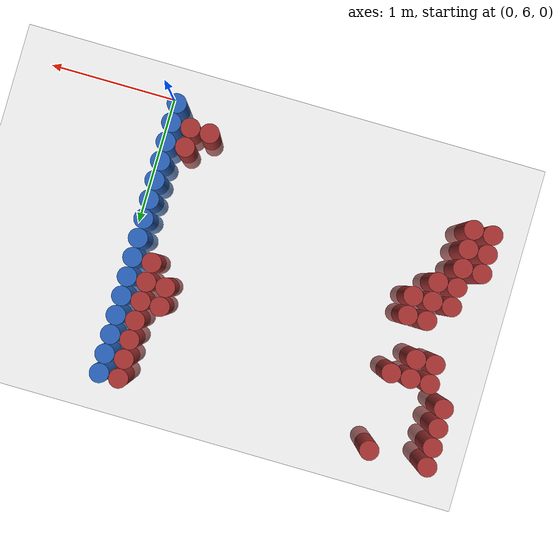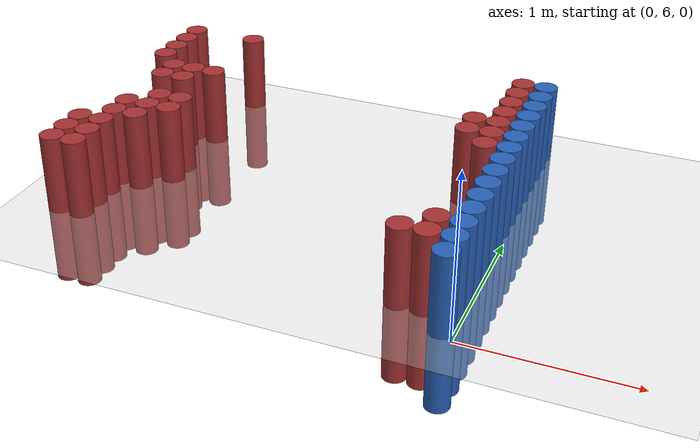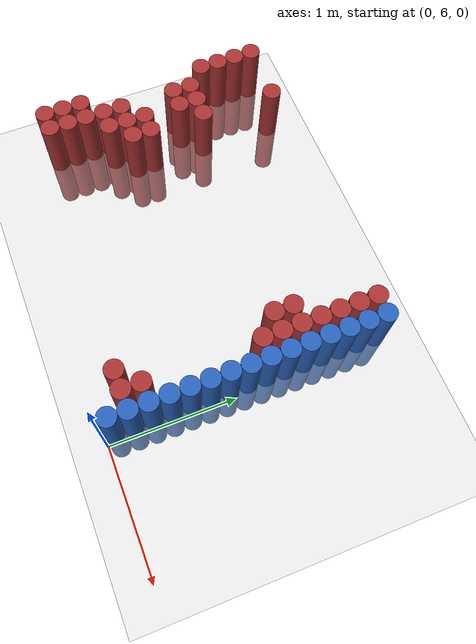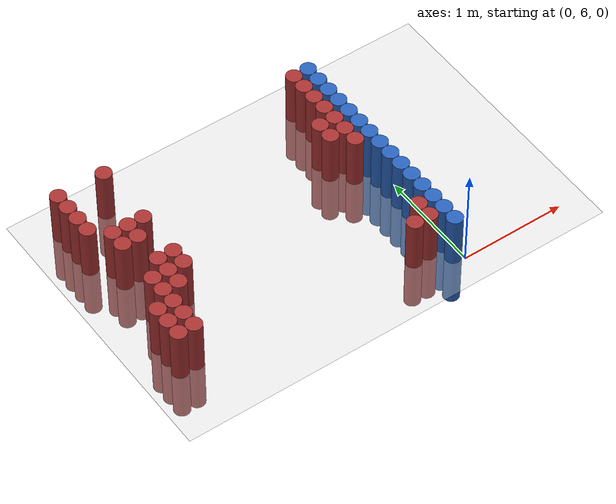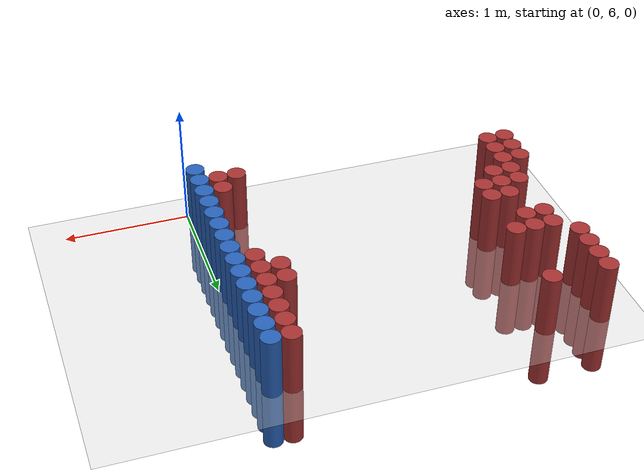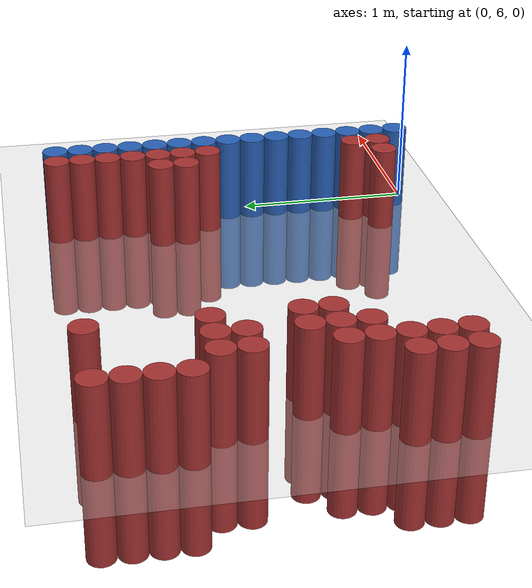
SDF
<sdf version="1.6">
 <world name="default">
  <model name="ground_plane">
   <static>1</static>
   <link name="link">
    <collision name="collision">
     <geometry><plane><normal>0 0 1</normal><size>100 100</size></plane></geometry>
     <surface><friction><ode><mu>100</mu><mu2>50</mu2></ode></friction></surface>
    </collision>
    <visual name="visual">
     <cast_shadows>0</cast_shadows>
     <geometry><plane><normal>0 0 1</normal><size>100 100</size></plane></geometry>
     <material>
      <script><uri>file://media/materials/scripts/gazebo.material</uri><name>Gazebo/Grey</name></script>
     </material>
    </visual>
   </link>
  </model>
  <model name="unit_cylinder_229">
   <static>1</static>
   <pose>-2.625000 6.375000 0.000000 0.000000 0.000000 0.000000</pose>
   <link name="link">
    <inertial>
     <mass>1</mass>
     <inertia><ixx>0.145833</ixx><ixy>0</ixy><ixz>0</ixz><iyy>0.145833</iyy><iyz>0</iyz><izz>0.125</izz></inertia>
    </inertial>
    <collision name="collision">
     <geometry><cylinder><radius>0.075000</radius><length>1</length></cylinder></geometry>
    </collision>
    <visual name="visual">
     <geometry><cylinder><radius>0.075000</radius><length>1</length></cylinder></geometry>
     <material>
      <ambient>0.648000 0.192000 0.192000 1</ambient>
      <diffuse>0.648000 0.192000 0.192000 1</diffuse>
     </material>
     <material>
      <script><name>Gazebo/Grey</name><uri>file://media/materials/scripts/gazebo.material</uri></script>
     </material>
    </visual>
   </link>
  </model>
  <model name="unit_cylinder_230">
   <static>1</static>
   <pose>-2.625000 6.525000 0.000000 0.000000 0.000000 0.000000</pose>
   <link name="link">
    <inertial>
     <mass>1</mass>
     <inertia><ixx>0.145833</ixx><ixy>0</ixy><ixz>0</ixz><iyy>0.145833</iyy><iyz>0</iyz><izz>0.125</izz></inertia>
    </inertial>
    <collision name="collision">
     <geometry><cylinder><radius>0.075000</radius><length>1</length></cylinder></geometry>
    </collision>
    <visual name="visual">
     <geometry><cylinder><radius>0.075000</radius><length>1</length></cylinder></geometry>
     <material>
      <ambient>0.648000 0.192000 0.192000 1</ambient>
      <diffuse>0.648000 0.192000 0.192000 1</diffuse>
     </material>
     <material>
      <script><name>Gazebo/Grey</name><uri>file://media/materials/scripts/gazebo.material</uri></script>
     </material>
    </visual>
   </link>
  </model>
  <model name="unit_cylinder_231">
   <static>1</static>
   <pose>-2.625000 6.675000 0.000000 0.000000 0.000000 0.000000</pose>
   <link name="link">
    <inertial>
     <mass>1</mass>
     <inertia><ixx>0.145833</ixx><ixy>0</ixy><ixz>0</ixz><iyy>0.145833</iyy><iyz>0</iyz><izz>0.125</izz></inertia>
    </inertial>
    <collision name="collision">
     <geometry><cylinder><radius>0.075000</radius><length>1</length></cylinder></geometry>
    </collision>
    <visual name="visual">
     <geometry><cylinder><radius>0.075000</radius><length>1</length></cylinder></geometry>
     <material>
      <ambient>0.648000 0.192000 0.192000 1</ambient>
      <diffuse>0.648000 0.192000 0.192000 1</diffuse>
     </material>
     <material>
      <script><name>Gazebo/Grey</name><uri>file://media/materials/scripts/gazebo.material</uri></script>
     </material>
    </visual>
   </link>
  </model>
  <model name="unit_cylinder_232">
   <static>1</static>
   <pose>-2.625000 7.725000 0.000000 0.000000 0.000000 0.000000</pose>
   <link name="link">
    <inertial>
     <mass>1</mass>
     <inertia><ixx>0.145833</ixx><ixy>0</ixy><ixz>0</ixz><iyy>0.145833</iyy><iyz>0</iyz><izz>0.125</izz></inertia>
    </inertial>
    <collision name="collision">
     <geometry><cylinder><radius>0.075000</radius><length>1</length></cylinder></geometry>
    </collision>
    <visual name="visual">
     <geometry><cylinder><radius>0.075000</radius><length>1</length></cylinder></geometry>
     <material>
      <ambient>0.648000 0.192000 0.192000 1</ambient>
      <diffuse>0.648000 0.192000 0.192000 1</diffuse>
     </material>
     <material>
      <script><name>Gazebo/Grey</name><uri>file://media/materials/scripts/gazebo.material</uri></script>
     </material>
    </visual>
   </link>
  </model>
  <model name="unit_cylinder_233">
   <static>1</static>
   <pose>-2.625000 7.875000 0.000000 0.000000 0.000000 0.000000</pose>
   <link name="link">
    <inertial>
     <mass>1</mass>
     <inertia><ixx>0.145833</ixx><ixy>0</ixy><ixz>0</ixz><iyy>0.145833</iyy><iyz>0</iyz><izz>0.125</izz></inertia>
    </inertial>
    <collision name="collision">
     <geometry><cylinder><radius>0.075000</radius><length>1</length></cylinder></geometry>
    </collision>
    <visual name="visual">
     <geometry><cylinder><radius>0.075000</radius><length>1</length></cylinder></geometry>
     <material>
      <ambient>0.648000 0.192000 0.192000 1</ambient>
      <diffuse>0.648000 0.192000 0.192000 1</diffuse>
     </material>
     <material>
      <script><name>Gazebo/Grey</name><uri>file://media/materials/scripts/gazebo.material</uri></script>
     </material>
    </visual>
   </link>
  </model>
  <model name="unit_cylinder_234">
   <static>1</static>
   <pose>-2.625000 8.025000 0.000000 0.000000 0.000000 0.000000</pose>
   <link name="link">
    <inertial>
     <mass>1</mass>
     <inertia><ixx>0.145833</ixx><ixy>0</ixy><ixz>0</ixz><iyy>0.145833</iyy><iyz>0</iyz><izz>0.125</izz></inertia>
    </inertial>
    <collision name="collision">
     <geometry><cylinder><radius>0.075000</radius><length>1</length></cylinder></geometry>
    </collision>
    <visual name="visual">
     <geometry><cylinder><radius>0.075000</radius><length>1</length></cylinder></geometry>
     <material>
      <ambient>0.648000 0.192000 0.192000 1</ambient>
      <diffuse>0.648000 0.192000 0.192000 1</diffuse>
     </material>
     <material>
      <script><name>Gazebo/Grey</name><uri>file://media/materials/scripts/gazebo.material</uri></script>
     </material>
    </visual>
   </link>
  </model>
  <model name="unit_cylinder_235">
   <static>1</static>
   <pose>-2.625000 8.175000 0.000000 0.000000 0.000000 0.000000</pose>
   <link name="link">
    <inertial>
     <mass>1</mass>
     <inertia><ixx>0.145833</ixx><ixy>0</ixy><ixz>0</ixz><iyy>0.145833</iyy><iyz>0</iyz><izz>0.125</izz></inertia>
    </inertial>
    <collision name="collision">
     <geometry><cylinder><radius>0.075000</radius><length>1</length></cylinder></geometry>
    </collision>
    <visual name="visual">
     <geometry><cylinder><radius>0.075000</radius><length>1</length></cylinder></geometry>
     <material>
      <ambient>0.648000 0.192000 0.192000 1</ambient>
      <diffuse>0.648000 0.192000 0.192000 1</diffuse>
     </material>
     <material>
      <script><name>Gazebo/Grey</name><uri>file://media/materials/scripts/gazebo.material</uri></script>
     </material>
    </visual>
   </link>
  </model>
  <model name="unit_cylinder_241">
   <static>1</static>
   <pose>-2.475000 6.375000 0.000000 0.000000 0.000000 0.000000</pose>
   <link name="link">
    <inertial>
     <mass>1</mass>
     <inertia><ixx>0.145833</ixx><ixy>0</ixy><ixz>0</ixz><iyy>0.145833</iyy><iyz>0</iyz><izz>0.125</izz></inertia>
    </inertial>
    <collision name="collision">
     <geometry><cylinder><radius>0.075000</radius><length>1</length></cylinder></geometry>
    </collision>
    <visual name="visual">
     <geometry><cylinder><radius>0.075000</radius><length>1</length></cylinder></geometry>
     <material>
      <ambient>0.648000 0.192000 0.192000 1</ambient>
      <diffuse>0.648000 0.192000 0.192000 1</diffuse>
     </material>
     <material>
      <script><name>Gazebo/Grey</name><uri>file://media/materials/scripts/gazebo.material</uri></script>
     </material>
    </visual>
   </link>
  </model>
  <model name="unit_cylinder_242">
   <static>1</static>
   <pose>-2.475000 6.525000 0.000000 0.000000 0.000000 0.000000</pose>
   <link name="link">
    <inertial>
     <mass>1</mass>
     <inertia><ixx>0.145833</ixx><ixy>0</ixy><ixz>0</ixz><iyy>0.145833</iyy><iyz>0</iyz><izz>0.125</izz></inertia>
    </inertial>
    <collision name="collision">
     <geometry><cylinder><radius>0.075000</radius><length>1</length></cylinder></geometry>
    </collision>
    <visual name="visual">
     <geometry><cylinder><radius>0.075000</radius><length>1</length></cylinder></geometry>
     <material>
      <ambient>0.648000 0.192000 0.192000 1</ambient>
      <diffuse>0.648000 0.192000 0.192000 1</diffuse>
     </material>
     <material>
      <script><name>Gazebo/Grey</name><uri>file://media/materials/scripts/gazebo.material</uri></script>
     </material>
    </visual>
   </link>
  </model>
  <model name="unit_cylinder_243">
   <static>1</static>
   <pose>-2.475000 6.675000 0.000000 0.000000 0.000000 0.000000</pose>
   <link name="link">
    <inertial>
     <mass>1</mass>
     <inertia><ixx>0.145833</ixx><ixy>0</ixy><ixz>0</ixz><iyy>0.145833</iyy><iyz>0</iyz><izz>0.125</izz></inertia>
    </inertial>
    <collision name="collision">
     <geometry><cylinder><radius>0.075000</radius><length>1</length></cylinder></geometry>
    </collision>
    <visual name="visual">
     <geometry><cylinder><radius>0.075000</radius><length>1</length></cylinder></geometry>
     <material>
      <ambient>0.648000 0.192000 0.192000 1</ambient>
      <diffuse>0.648000 0.192000 0.192000 1</diffuse>
     </material>
     <material>
      <script><name>Gazebo/Grey</name><uri>file://media/materials/scripts/gazebo.material</uri></script>
     </material>
    </visual>
   </link>
  </model>
  <model name="unit_cylinder_244">
   <static>1</static>
   <pose>-2.475000 6.825000 0.000000 0.000000 0.000000 0.000000</pose>
   <link name="link">
    <inertial>
     <mass>1</mass>
     <inertia><ixx>0.145833</ixx><ixy>0</ixy><ixz>0</ixz><iyy>0.145833</iyy><iyz>0</iyz><izz>0.125</izz></inertia>
    </inertial>
    <collision name="collision">
     <geometry><cylinder><radius>0.075000</radius><length>1</length></cylinder></geometry>
    </collision>
    <visual name="visual">
     <geometry><cylinder><radius>0.075000</radius><length>1</length></cylinder></geometry>
     <material>
      <ambient>0.648000 0.192000 0.192000 1</ambient>
      <diffuse>0.648000 0.192000 0.192000 1</diffuse>
     </material>
     <material>
      <script><name>Gazebo/Grey</name><uri>file://media/materials/scripts/gazebo.material</uri></script>
     </material>
    </visual>
   </link>
  </model>
  <model name="unit_cylinder_245">
   <static>1</static>
   <pose>-2.475000 6.975000 0.000000 0.000000 0.000000 0.000000</pose>
   <link name="link">
    <inertial>
     <mass>1</mass>
     <inertia><ixx>0.145833</ixx><ixy>0</ixy><ixz>0</ixz><iyy>0.145833</iyy><iyz>0</iyz><izz>0.125</izz></inertia>
    </inertial>
    <collision name="collision">
     <geometry><cylinder><radius>0.075000</radius><length>1</length></cylinder></geometry>
    </collision>
    <visual name="visual">
     <geometry><cylinder><radius>0.075000</radius><length>1</length></cylinder></geometry>
     <material>
      <ambient>0.648000 0.192000 0.192000 1</ambient>
      <diffuse>0.648000 0.192000 0.192000 1</diffuse>
     </material>
     <material>
      <script><name>Gazebo/Grey</name><uri>file://media/materials/scripts/gazebo.material</uri></script>
     </material>
    </visual>
   </link>
  </model>
  <model name="unit_cylinder_246">
   <static>1</static>
   <pose>-2.475000 7.425000 0.000000 0.000000 0.000000 0.000000</pose>
   <link name="link">
    <inertial>
     <mass>1</mass>
     <inertia><ixx>0.145833</ixx><ixy>0</ixy><ixz>0</ixz><iyy>0.145833</iyy><iyz>0</iyz><izz>0.125</izz></inertia>
    </inertial>
    <collision name="collision">
     <geometry><cylinder><radius>0.075000</radius><length>1</length></cylinder></geometry>
    </collision>
    <visual name="visual">
     <geometry><cylinder><radius>0.075000</radius><length>1</length></cylinder></geometry>
     <material>
      <ambient>0.648000 0.192000 0.192000 1</ambient>
      <diffuse>0.648000 0.192000 0.192000 1</diffuse>
     </material>
     <material>
      <script><name>Gazebo/Grey</name><uri>file://media/materials/scripts/gazebo.material</uri></script>
     </material>
    </visual>
   </link>
  </model>
  <model name="unit_cylinder_247">
   <static>1</static>
   <pose>-2.475000 7.575000 0.000000 0.000000 0.000000 0.000000</pose>
   <link name="link">
    <inertial>
     <mass>1</mass>
     <inertia><ixx>0.145833</ixx><ixy>0</ixy><ixz>0</ixz><iyy>0.145833</iyy><iyz>0</iyz><izz>0.125</izz></inertia>
    </inertial>
    <collision name="collision">
     <geometry><cylinder><radius>0.075000</radius><length>1</length></cylinder></geometry>
    </collision>
    <visual name="visual">
     <geometry><cylinder><radius>0.075000</radius><length>1</length></cylinder></geometry>
     <material>
      <ambient>0.648000 0.192000 0.192000 1</ambient>
      <diffuse>0.648000 0.192000 0.192000 1</diffuse>
     </material>
     <material>
      <script><name>Gazebo/Grey</name><uri>file://media/materials/scripts/gazebo.material</uri></script>
     </material>
    </visual>
   </link>
  </model>
  <model name="unit_cylinder_256">
   <static>1</static>
   <pose>-2.325000 6.825000 0.000000 0.000000 0.000000 0.000000</pose>
   <link name="link">
    <inertial>
     <mass>1</mass>
     <inertia><ixx>0.145833</ixx><ixy>0</ixy><ixz>0</ixz><iyy>0.145833</iyy><iyz>0</iyz><izz>0.125</izz></inertia>
    </inertial>
    <collision name="collision">
     <geometry><cylinder><radius>0.075000</radius><length>1</length></cylinder></geometry>
    </collision>
    <visual name="visual">
     <geometry><cylinder><radius>0.075000</radius><length>1</length></cylinder></geometry>
     <material>
      <ambient>0.648000 0.192000 0.192000 1</ambient>
      <diffuse>0.648000 0.192000 0.192000 1</diffuse>
     </material>
     <material>
      <script><name>Gazebo/Grey</name><uri>file://media/materials/scripts/gazebo.material</uri></script>
     </material>
    </visual>
   </link>
  </model>
  <model name="unit_cylinder_257">
   <static>1</static>
   <pose>-2.325000 6.975000 0.000000 0.000000 0.000000 0.000000</pose>
   <link name="link">
    <inertial>
     <mass>1</mass>
     <inertia><ixx>0.145833</ixx><ixy>0</ixy><ixz>0</ixz><iyy>0.145833</iyy><iyz>0</iyz><izz>0.125</izz></inertia>
    </inertial>
    <collision name="collision">
     <geometry><cylinder><radius>0.075000</radius><length>1</length></cylinder></geometry>
    </collision>
    <visual name="visual">
     <geometry><cylinder><radius>0.075000</radius><length>1</length></cylinder></geometry>
     <material>
      <ambient>0.648000 0.192000 0.192000 1</ambient>
      <diffuse>0.648000 0.192000 0.192000 1</diffuse>
     </material>
     <material>
      <script><name>Gazebo/Grey</name><uri>file://media/materials/scripts/gazebo.material</uri></script>
     </material>
    </visual>
   </link>
  </model>
  <model name="unit_cylinder_258">
   <static>1</static>
   <pose>-2.325000 7.125000 0.000000 0.000000 0.000000 0.000000</pose>
   <link name="link">
    <inertial>
     <mass>1</mass>
     <inertia><ixx>0.145833</ixx><ixy>0</ixy><ixz>0</ixz><iyy>0.145833</iyy><iyz>0</iyz><izz>0.125</izz></inertia>
    </inertial>
    <collision name="collision">
     <geometry><cylinder><radius>0.075000</radius><length>1</length></cylinder></geometry>
    </collision>
    <visual name="visual">
     <geometry><cylinder><radius>0.075000</radius><length>1</length></cylinder></geometry>
     <material>
      <ambient>0.648000 0.192000 0.192000 1</ambient>
      <diffuse>0.648000 0.192000 0.192000 1</diffuse>
     </material>
     <material>
      <script><name>Gazebo/Grey</name><uri>file://media/materials/scripts/gazebo.material</uri></script>
     </material>
    </visual>
   </link>
  </model>
  <model name="unit_cylinder_259">
   <static>1</static>
   <pose>-2.325000 7.425000 0.000000 0.000000 0.000000 0.000000</pose>
   <link name="link">
    <inertial>
     <mass>1</mass>
     <inertia><ixx>0.145833</ixx><ixy>0</ixy><ixz>0</ixz><iyy>0.145833</iyy><iyz>0</iyz><izz>0.125</izz></inertia>
    </inertial>
    <collision name="collision">
     <geometry><cylinder><radius>0.075000</radius><length>1</length></cylinder></geometry>
    </collision>
    <visual name="visual">
     <geometry><cylinder><radius>0.075000</radius><length>1</length></cylinder></geometry>
     <material>
      <ambient>0.648000 0.192000 0.192000 1</ambient>
      <diffuse>0.648000 0.192000 0.192000 1</diffuse>
     </material>
     <material>
      <script><name>Gazebo/Grey</name><uri>file://media/materials/scripts/gazebo.material</uri></script>
     </material>
    </visual>
   </link>
  </model>
  <model name="unit_cylinder_260">
   <static>1</static>
   <pose>-2.325000 7.575000 0.000000 0.000000 0.000000 0.000000</pose>
   <link name="link">
    <inertial>
     <mass>1</mass>
     <inertia><ixx>0.145833</ixx><ixy>0</ixy><ixz>0</ixz><iyy>0.145833</iyy><iyz>0</iyz><izz>0.125</izz></inertia>
    </inertial>
    <collision name="collision">
     <geometry><cylinder><radius>0.075000</radius><length>1</length></cylinder></geometry>
    </collision>
    <visual name="visual">
     <geometry><cylinder><radius>0.075000</radius><length>1</length></cylinder></geometry>
     <material>
      <ambient>0.648000 0.192000 0.192000 1</ambient>
      <diffuse>0.648000 0.192000 0.192000 1</diffuse>
     </material>
     <material>
      <script><name>Gazebo/Grey</name><uri>file://media/materials/scripts/gazebo.material</uri></script>
     </material>
    </visual>
   </link>
  </model>
  <model name="unit_cylinder_268">
   <static>1</static>
   <pose>-2.175000 6.975000 0.000000 0.000000 0.000000 0.000000</pose>
   <link name="link">
    <inertial>
     <mass>1</mass>
     <inertia><ixx>0.145833</ixx><ixy>0</ixy><ixz>0</ixz><iyy>0.145833</iyy><iyz>0</iyz><izz>0.125</izz></inertia>
    </inertial>
    <collision name="collision">
     <geometry><cylinder><radius>0.075000</radius><length>1</length></cylinder></geometry>
    </collision>
    <visual name="visual">
     <geometry><cylinder><radius>0.075000</radius><length>1</length></cylinder></geometry>
     <material>
      <ambient>0.648000 0.192000 0.192000 1</ambient>
      <diffuse>0.648000 0.192000 0.192000 1</diffuse>
     </material>
     <material>
      <script><name>Gazebo/Grey</name><uri>file://media/materials/scripts/gazebo.material</uri></script>
     </material>
    </visual>
   </link>
  </model>
  <model name="unit_cylinder_269">
   <static>1</static>
   <pose>-2.175000 7.125000 0.000000 0.000000 0.000000 0.000000</pose>
   <link name="link">
    <inertial>
     <mass>1</mass>
     <inertia><ixx>0.145833</ixx><ixy>0</ixy><ixz>0</ixz><iyy>0.145833</iyy><iyz>0</iyz><izz>0.125</izz></inertia>
    </inertial>
    <collision name="collision">
     <geometry><cylinder><radius>0.075000</radius><length>1</length></cylinder></geometry>
    </collision>
    <visual name="visual">
     <geometry><cylinder><radius>0.075000</radius><length>1</length></cylinder></geometry>
     <material>
      <ambient>0.648000 0.192000 0.192000 1</ambient>
      <diffuse>0.648000 0.192000 0.192000 1</diffuse>
     </material>
     <material>
      <script><name>Gazebo/Grey</name><uri>file://media/materials/scripts/gazebo.material</uri></script>
     </material>
    </visual>
   </link>
  </model>
  <model name="unit_cylinder_270">
   <static>1</static>
   <pose>-2.175000 7.575000 0.000000 0.000000 0.000000 0.000000</pose>
   <link name="link">
    <inertial>
     <mass>1</mass>
     <inertia><ixx>0.145833</ixx><ixy>0</ixy><ixz>0</ixz><iyy>0.145833</iyy><iyz>0</iyz><izz>0.125</izz></inertia>
    </inertial>
    <collision name="collision">
     <geometry><cylinder><radius>0.075000</radius><length>1</length></cylinder></geometry>
    </collision>
    <visual name="visual">
     <geometry><cylinder><radius>0.075000</radius><length>1</length></cylinder></geometry>
     <material>
      <ambient>0.648000 0.192000 0.192000 1</ambient>
      <diffuse>0.648000 0.192000 0.192000 1</diffuse>
     </material>
     <material>
      <script><name>Gazebo/Grey</name><uri>file://media/materials/scripts/gazebo.material</uri></script>
     </material>
    </visual>
   </link>
  </model>
  <model name="unit_cylinder_271">
   <static>1</static>
   <pose>-2.175000 8.175000 0.000000 0.000000 0.000000 0.000000</pose>
   <link name="link">
    <inertial>
     <mass>1</mass>
     <inertia><ixx>0.145833</ixx><ixy>0</ixy><ixz>0</ixz><iyy>0.145833</iyy><iyz>0</iyz><izz>0.125</izz></inertia>
    </inertial>
    <collision name="collision">
     <geometry><cylinder><radius>0.075000</radius><length>1</length></cylinder></geometry>
    </collision>
    <visual name="visual">
     <geometry><cylinder><radius>0.075000</radius><length>1</length></cylinder></geometry>
     <material>
      <ambient>0.648000 0.192000 0.192000 1</ambient>
      <diffuse>0.648000 0.192000 0.192000 1</diffuse>
     </material>
     <material>
      <script><name>Gazebo/Grey</name><uri>file://media/materials/scripts/gazebo.material</uri></script>
     </material>
    </visual>
   </link>
  </model>
  <model name="unit_cylinder_301">
   <static>1</static>
   <pose>-0.375000 6.225000 0.000000 0.000000 0.000000 0.000000</pose>
   <link name="link">
    <inertial>
     <mass>1</mass>
     <inertia><ixx>0.145833</ixx><ixy>0</ixy><ixz>0</ixz><iyy>0.145833</iyy><iyz>0</iyz><izz>0.125</izz></inertia>
    </inertial>
    <collision name="collision">
     <geometry><cylinder><radius>0.075000</radius><length>1</length></cylinder></geometry>
    </collision>
    <visual name="visual">
     <geometry><cylinder><radius>0.075000</radius><length>1</length></cylinder></geometry>
     <material>
      <ambient>0.648000 0.192000 0.192000 1</ambient>
      <diffuse>0.648000 0.192000 0.192000 1</diffuse>
     </material>
     <material>
      <script><name>Gazebo/Grey</name><uri>file://media/materials/scripts/gazebo.material</uri></script>
     </material>
    </visual>
   </link>
  </model>
  <model name="unit_cylinder_302">
   <static>1</static>
   <pose>-0.375000 7.425000 0.000000 0.000000 0.000000 0.000000</pose>
   <link name="link">
    <inertial>
     <mass>1</mass>
     <inertia><ixx>0.145833</ixx><ixy>0</ixy><ixz>0</ixz><iyy>0.145833</iyy><iyz>0</iyz><izz>0.125</izz></inertia>
    </inertial>
    <collision name="collision">
     <geometry><cylinder><radius>0.075000</radius><length>1</length></cylinder></geometry>
    </collision>
    <visual name="visual">
     <geometry><cylinder><radius>0.075000</radius><length>1</length></cylinder></geometry>
     <material>
      <ambient>0.648000 0.192000 0.192000 1</ambient>
      <diffuse>0.648000 0.192000 0.192000 1</diffuse>
     </material>
     <material>
      <script><name>Gazebo/Grey</name><uri>file://media/materials/scripts/gazebo.material</uri></script>
     </material>
    </visual>
   </link>
  </model>
  <model name="unit_cylinder_303">
   <static>1</static>
   <pose>-0.375000 7.575000 0.000000 0.000000 0.000000 0.000000</pose>
   <link name="link">
    <inertial>
     <mass>1</mass>
     <inertia><ixx>0.145833</ixx><ixy>0</ixy><ixz>0</ixz><iyy>0.145833</iyy><iyz>0</iyz><izz>0.125</izz></inertia>
    </inertial>
    <collision name="collision">
     <geometry><cylinder><radius>0.075000</radius><length>1</length></cylinder></geometry>
    </collision>
    <visual name="visual">
     <geometry><cylinder><radius>0.075000</radius><length>1</length></cylinder></geometry>
     <material>
      <ambient>0.648000 0.192000 0.192000 1</ambient>
      <diffuse>0.648000 0.192000 0.192000 1</diffuse>
     </material>
     <material>
      <script><name>Gazebo/Grey</name><uri>file://media/materials/scripts/gazebo.material</uri></script>
     </material>
    </visual>
   </link>
  </model>
  <model name="unit_cylinder_307">
   <static>1</static>
   <pose>-0.225000 6.225000 0.000000 0.000000 0.000000 0.000000</pose>
   <link name="link">
    <inertial>
     <mass>1</mass>
     <inertia><ixx>0.145833</ixx><ixy>0</ixy><ixz>0</ixz><iyy>0.145833</iyy><iyz>0</iyz><izz>0.125</izz></inertia>
    </inertial>
    <collision name="collision">
     <geometry><cylinder><radius>0.075000</radius><length>1</length></cylinder></geometry>
    </collision>
    <visual name="visual">
     <geometry><cylinder><radius>0.075000</radius><length>1</length></cylinder></geometry>
     <material>
      <ambient>0.648000 0.192000 0.192000 1</ambient>
      <diffuse>0.648000 0.192000 0.192000 1</diffuse>
     </material>
     <material>
      <script><name>Gazebo/Grey</name><uri>file://media/materials/scripts/gazebo.material</uri></script>
     </material>
    </visual>
   </link>
  </model>
  <model name="unit_cylinder_308">
   <static>1</static>
   <pose>-0.225000 6.375000 0.000000 0.000000 0.000000 0.000000</pose>
   <link name="link">
    <inertial>
     <mass>1</mass>
     <inertia><ixx>0.145833</ixx><ixy>0</ixy><ixz>0</ixz><iyy>0.145833</iyy><iyz>0</iyz><izz>0.125</izz></inertia>
    </inertial>
    <collision name="collision">
     <geometry><cylinder><radius>0.075000</radius><length>1</length></cylinder></geometry>
    </collision>
    <visual name="visual">
     <geometry><cylinder><radius>0.075000</radius><length>1</length></cylinder></geometry>
     <material>
      <ambient>0.648000 0.192000 0.192000 1</ambient>
      <diffuse>0.648000 0.192000 0.192000 1</diffuse>
     </material>
     <material>
      <script><name>Gazebo/Grey</name><uri>file://media/materials/scripts/gazebo.material</uri></script>
     </material>
    </visual>
   </link>
  </model>
  <model name="unit_cylinder_309">
   <static>1</static>
   <pose>-0.225000 7.275000 0.000000 0.000000 0.000000 0.000000</pose>
   <link name="link">
    <inertial>
     <mass>1</mass>
     <inertia><ixx>0.145833</ixx><ixy>0</ixy><ixz>0</ixz><iyy>0.145833</iyy><iyz>0</iyz><izz>0.125</izz></inertia>
    </inertial>
    <collision name="collision">
     <geometry><cylinder><radius>0.075000</radius><length>1</length></cylinder></geometry>
    </collision>
    <visual name="visual">
     <geometry><cylinder><radius>0.075000</radius><length>1</length></cylinder></geometry>
     <material>
      <ambient>0.648000 0.192000 0.192000 1</ambient>
      <diffuse>0.648000 0.192000 0.192000 1</diffuse>
     </material>
     <material>
      <script><name>Gazebo/Grey</name><uri>file://media/materials/scripts/gazebo.material</uri></script>
     </material>
    </visual>
   </link>
  </model>
  <model name="unit_cylinder_310">
   <static>1</static>
   <pose>-0.225000 7.425000 0.000000 0.000000 0.000000 0.000000</pose>
   <link name="link">
    <inertial>
     <mass>1</mass>
     <inertia><ixx>0.145833</ixx><ixy>0</ixy><ixz>0</ixz><iyy>0.145833</iyy><iyz>0</iyz><izz>0.125</izz></inertia>
    </inertial>
    <collision name="collision">
     <geometry><cylinder><radius>0.075000</radius><length>1</length></cylinder></geometry>
    </collision>
    <visual name="visual">
     <geometry><cylinder><radius>0.075000</radius><length>1</length></cylinder></geometry>
     <material>
      <ambient>0.648000 0.192000 0.192000 1</ambient>
      <diffuse>0.648000 0.192000 0.192000 1</diffuse>
     </material>
     <material>
      <script><name>Gazebo/Grey</name><uri>file://media/materials/scripts/gazebo.material</uri></script>
     </material>
    </visual>
   </link>
  </model>
  <model name="unit_cylinder_311">
   <static>1</static>
   <pose>-0.225000 7.575000 0.000000 0.000000 0.000000 0.000000</pose>
   <link name="link">
    <inertial>
     <mass>1</mass>
     <inertia><ixx>0.145833</ixx><ixy>0</ixy><ixz>0</ixz><iyy>0.145833</iyy><iyz>0</iyz><izz>0.125</izz></inertia>
    </inertial>
    <collision name="collision">
     <geometry><cylinder><radius>0.075000</radius><length>1</length></cylinder></geometry>
    </collision>
    <visual name="visual">
     <geometry><cylinder><radius>0.075000</radius><length>1</length></cylinder></geometry>
     <material>
      <ambient>0.648000 0.192000 0.192000 1</ambient>
      <diffuse>0.648000 0.192000 0.192000 1</diffuse>
     </material>
     <material>
      <script><name>Gazebo/Grey</name><uri>file://media/materials/scripts/gazebo.material</uri></script>
     </material>
    </visual>
   </link>
  </model>
  <model name="unit_cylinder_312">
   <static>1</static>
   <pose>-0.225000 7.725000 0.000000 0.000000 0.000000 0.000000</pose>
   <link name="link">
    <inertial>
     <mass>1</mass>
     <inertia><ixx>0.145833</ixx><ixy>0</ixy><ixz>0</ixz><iyy>0.145833</iyy><iyz>0</iyz><izz>0.125</izz></inertia>
    </inertial>
    <collision name="collision">
     <geometry><cylinder><radius>0.075000</radius><length>1</length></cylinder></geometry>
    </collision>
    <visual name="visual">
     <geometry><cylinder><radius>0.075000</radius><length>1</length></cylinder></geometry>
     <material>
      <ambient>0.648000 0.192000 0.192000 1</ambient>
      <diffuse>0.648000 0.192000 0.192000 1</diffuse>
     </material>
     <material>
      <script><name>Gazebo/Grey</name><uri>file://media/materials/scripts/gazebo.material</uri></script>
     </material>
    </visual>
   </link>
  </model>
  <model name="unit_cylinder_313">
   <static>1</static>
   <pose>-0.225000 7.875000 0.000000 0.000000 0.000000 0.000000</pose>
   <link name="link">
    <inertial>
     <mass>1</mass>
     <inertia><ixx>0.145833</ixx><ixy>0</ixy><ixz>0</ixz><iyy>0.145833</iyy><iyz>0</iyz><izz>0.125</izz></inertia>
    </inertial>
    <collision name="collision">
     <geometry><cylinder><radius>0.075000</radius><length>1</length></cylinder></geometry>
    </collision>
    <visual name="visual">
     <geometry><cylinder><radius>0.075000</radius><length>1</length></cylinder></geometry>
     <material>
      <ambient>0.648000 0.192000 0.192000 1</ambient>
      <diffuse>0.648000 0.192000 0.192000 1</diffuse>
     </material>
     <material>
      <script><name>Gazebo/Grey</name><uri>file://media/materials/scripts/gazebo.material</uri></script>
     </material>
    </visual>
   </link>
  </model>
  <model name="unit_cylinder_314">
   <static>1</static>
   <pose>-0.225000 8.025000 0.000000 0.000000 0.000000 0.000000</pose>
   <link name="link">
    <inertial>
     <mass>1</mass>
     <inertia><ixx>0.145833</ixx><ixy>0</ixy><ixz>0</ixz><iyy>0.145833</iyy><iyz>0</iyz><izz>0.125</izz></inertia>
    </inertial>
    <collision name="collision">
     <geometry><cylinder><radius>0.075000</radius><length>1</length></cylinder></geometry>
    </collision>
    <visual name="visual">
     <geometry><cylinder><radius>0.075000</radius><length>1</length></cylinder></geometry>
     <material>
      <ambient>0.648000 0.192000 0.192000 1</ambient>
      <diffuse>0.648000 0.192000 0.192000 1</diffuse>
     </material>
     <material>
      <script><name>Gazebo/Grey</name><uri>file://media/materials/scripts/gazebo.material</uri></script>
     </material>
    </visual>
   </link>
  </model>
  <model name="unit_cylinder_315">
   <static>1</static>
   <pose>-0.225000 8.175000 0.000000 0.000000 0.000000 0.000000</pose>
   <link name="link">
    <inertial>
     <mass>1</mass>
     <inertia><ixx>0.145833</ixx><ixy>0</ixy><ixz>0</ixz><iyy>0.145833</iyy><iyz>0</iyz><izz>0.125</izz></inertia>
    </inertial>
    <collision name="collision">
     <geometry><cylinder><radius>0.075000</radius><length>1</length></cylinder></geometry>
    </collision>
    <visual name="visual">
     <geometry><cylinder><radius>0.075000</radius><length>1</length></cylinder></geometry>
     <material>
      <ambient>0.648000 0.192000 0.192000 1</ambient>
      <diffuse>0.648000 0.192000 0.192000 1</diffuse>
     </material>
     <material>
      <script><name>Gazebo/Grey</name><uri>file://media/materials/scripts/gazebo.material</uri></script>
     </material>
    </visual>
   </link>
  </model>
  <model name="unit_cylinder_330">
   <static>1</static>
   <pose>-0.075000 6.075000 0.000000 0.000000 0.000000 0.000000</pose>
   <link name="link">
    <inertial>
     <mass>1</mass>
     <inertia><ixx>0.145833</ixx><ixy>0</ixy><ixz>0</ixz><iyy>0.145833</iyy><iyz>0</iyz><izz>0.125</izz></inertia>
    </inertial>
    <collision name="collision">
     <geometry><cylinder><radius>0.075000</radius><length>1</length></cylinder></geometry>
    </collision>
    <visual name="visual">
     <geometry><cylinder><radius>0.075000</radius><length>1</length></cylinder></geometry>
     <material>
      <ambient>0.152000 0.379000 0.720000 1</ambient>
      <diffuse>0.152000 0.379000 0.720000 1</diffuse>
     </material>
     <material>
      <script><name>Gazebo/Grey</name><uri>file://media/materials/scripts/gazebo.material</uri></script>
     </material>
    </visual>
   </link>
  </model>
  <model name="unit_cylinder_331">
   <static>1</static>
   <pose>-0.075000 6.225000 0.000000 0.000000 0.000000 0.000000</pose>
   <link name="link">
    <inertial>
     <mass>1</mass>
     <inertia><ixx>0.145833</ixx><ixy>0</ixy><ixz>0</ixz><iyy>0.145833</iyy><iyz>0</iyz><izz>0.125</izz></inertia>
    </inertial>
    <collision name="collision">
     <geometry><cylinder><radius>0.075000</radius><length>1</length></cylinder></geometry>
    </collision>
    <visual name="visual">
     <geometry><cylinder><radius>0.075000</radius><length>1</length></cylinder></geometry>
     <material>
      <ambient>0.152000 0.379000 0.720000 1</ambient>
      <diffuse>0.152000 0.379000 0.720000 1</diffuse>
     </material>
     <material>
      <script><name>Gazebo/Grey</name><uri>file://media/materials/scripts/gazebo.material</uri></script>
     </material>
    </visual>
   </link>
  </model>
  <model name="unit_cylinder_332">
   <static>1</static>
   <pose>-0.075000 6.375000 0.000000 0.000000 0.000000 0.000000</pose>
   <link name="link">
    <inertial>
     <mass>1</mass>
     <inertia><ixx>0.145833</ixx><ixy>0</ixy><ixz>0</ixz><iyy>0.145833</iyy><iyz>0</iyz><izz>0.125</izz></inertia>
    </inertial>
    <collision name="collision">
     <geometry><cylinder><radius>0.075000</radius><length>1</length></cylinder></geometry>
    </collision>
    <visual name="visual">
     <geometry><cylinder><radius>0.075000</radius><length>1</length></cylinder></geometry>
     <material>
      <ambient>0.152000 0.379000 0.720000 1</ambient>
      <diffuse>0.152000 0.379000 0.720000 1</diffuse>
     </material>
     <material>
      <script><name>Gazebo/Grey</name><uri>file://media/materials/scripts/gazebo.material</uri></script>
     </material>
    </visual>
   </link>
  </model>
  <model name="unit_cylinder_333">
   <static>1</static>
   <pose>-0.075000 6.525000 0.000000 0.000000 0.000000 0.000000</pose>
   <link name="link">
    <inertial>
     <mass>1</mass>
     <inertia><ixx>0.145833</ixx><ixy>0</ixy><ixz>0</ixz><iyy>0.145833</iyy><iyz>0</iyz><izz>0.125</izz></inertia>
    </inertial>
    <collision name="collision">
     <geometry><cylinder><radius>0.075000</radius><length>1</length></cylinder></geometry>
    </collision>
    <visual name="visual">
     <geometry><cylinder><radius>0.075000</radius><length>1</length></cylinder></geometry>
     <material>
      <ambient>0.152000 0.379000 0.720000 1</ambient>
      <diffuse>0.152000 0.379000 0.720000 1</diffuse>
     </material>
     <material>
      <script><name>Gazebo/Grey</name><uri>file://media/materials/scripts/gazebo.material</uri></script>
     </material>
    </visual>
   </link>
  </model>
  <model name="unit_cylinder_334">
   <static>1</static>
   <pose>-0.075000 6.675000 0.000000 0.000000 0.000000 0.000000</pose>
   <link name="link">
    <inertial>
     <mass>1</mass>
     <inertia><ixx>0.145833</ixx><ixy>0</ixy><ixz>0</ixz><iyy>0.145833</iyy><iyz>0</iyz><izz>0.125</izz></inertia>
    </inertial>
    <collision name="collision">
     <geometry><cylinder><radius>0.075000</radius><length>1</length></cylinder></geometry>
    </collision>
    <visual name="visual">
     <geometry><cylinder><radius>0.075000</radius><length>1</length></cylinder></geometry>
     <material>
      <ambient>0.152000 0.379000 0.720000 1</ambient>
      <diffuse>0.152000 0.379000 0.720000 1</diffuse>
     </material>
     <material>
      <script><name>Gazebo/Grey</name><uri>file://media/materials/scripts/gazebo.material</uri></script>
     </material>
    </visual>
   </link>
  </model>
  <model name="unit_cylinder_335">
   <static>1</static>
   <pose>-0.075000 6.825000 0.000000 0.000000 0.000000 0.000000</pose>
   <link name="link">
    <inertial>
     <mass>1</mass>
     <inertia><ixx>0.145833</ixx><ixy>0</ixy><ixz>0</ixz><iyy>0.145833</iyy><iyz>0</iyz><izz>0.125</izz></inertia>
    </inertial>
    <collision name="collision">
     <geometry><cylinder><radius>0.075000</radius><length>1</length></cylinder></geometry>
    </collision>
    <visual name="visual">
     <geometry><cylinder><radius>0.075000</radius><length>1</length></cylinder></geometry>
     <material>
      <ambient>0.152000 0.379000 0.720000 1</ambient>
      <diffuse>0.152000 0.379000 0.720000 1</diffuse>
     </material>
     <material>
      <script><name>Gazebo/Grey</name><uri>file://media/materials/scripts/gazebo.material</uri></script>
     </material>
    </visual>
   </link>
  </model>
  <model name="unit_cylinder_336">
   <static>1</static>
   <pose>-0.075000 6.975000 0.000000 0.000000 0.000000 0.000000</pose>
   <link name="link">
    <inertial>
     <mass>1</mass>
     <inertia><ixx>0.145833</ixx><ixy>0</ixy><ixz>0</ixz><iyy>0.145833</iyy><iyz>0</iyz><izz>0.125</izz></inertia>
    </inertial>
    <collision name="collision">
     <geometry><cylinder><radius>0.075000</radius><length>1</length></cylinder></geometry>
    </collision>
    <visual name="visual">
     <geometry><cylinder><radius>0.075000</radius><length>1</length></cylinder></geometry>
     <material>
      <ambient>0.152000 0.379000 0.720000 1</ambient>
      <diffuse>0.152000 0.379000 0.720000 1</diffuse>
     </material>
     <material>
      <script><name>Gazebo/Grey</name><uri>file://media/materials/scripts/gazebo.material</uri></script>
     </material>
    </visual>
   </link>
  </model>
  <model name="unit_cylinder_337">
   <static>1</static>
   <pose>-0.075000 7.125000 0.000000 0.000000 0.000000 0.000000</pose>
   <link name="link">
    <inertial>
     <mass>1</mass>
     <inertia><ixx>0.145833</ixx><ixy>0</ixy><ixz>0</ixz><iyy>0.145833</iyy><iyz>0</iyz><izz>0.125</izz></inertia>
    </inertial>
    <collision name="collision">
     <geometry><cylinder><radius>0.075000</radius><length>1</length></cylinder></geometry>
    </collision>
    <visual name="visual">
     <geometry><cylinder><radius>0.075000</radius><length>1</length></cylinder></geometry>
     <material>
      <ambient>0.152000 0.379000 0.720000 1</ambient>
      <diffuse>0.152000 0.379000 0.720000 1</diffuse>
     </material>
     <material>
      <script><name>Gazebo/Grey</name><uri>file://media/materials/scripts/gazebo.material</uri></script>
     </material>
    </visual>
   </link>
  </model>
  <model name="unit_cylinder_338">
   <static>1</static>
   <pose>-0.075000 7.275000 0.000000 0.000000 0.000000 0.000000</pose>
   <link name="link">
    <inertial>
     <mass>1</mass>
     <inertia><ixx>0.145833</ixx><ixy>0</ixy><ixz>0</ixz><iyy>0.145833</iyy><iyz>0</iyz><izz>0.125</izz></inertia>
    </inertial>
    <collision name="collision">
     <geometry><cylinder><radius>0.075000</radius><length>1</length></cylinder></geometry>
    </collision>
    <visual name="visual">
     <geometry><cylinder><radius>0.075000</radius><length>1</length></cylinder></geometry>
     <material>
      <ambient>0.152000 0.379000 0.720000 1</ambient>
      <diffuse>0.152000 0.379000 0.720000 1</diffuse>
     </material>
     <material>
      <script><name>Gazebo/Grey</name><uri>file://media/materials/scripts/gazebo.material</uri></script>
     </material>
    </visual>
   </link>
  </model>
  <model name="unit_cylinder_339">
   <static>1</static>
   <pose>-0.075000 7.425000 0.000000 0.000000 0.000000 0.000000</pose>
   <link name="link">
    <inertial>
     <mass>1</mass>
     <inertia><ixx>0.145833</ixx><ixy>0</ixy><ixz>0</ixz><iyy>0.145833</iyy><iyz>0</iyz><izz>0.125</izz></inertia>
    </inertial>
    <collision name="collision">
     <geometry><cylinder><radius>0.075000</radius><length>1</length></cylinder></geometry>
    </collision>
    <visual name="visual">
     <geometry><cylinder><radius>0.075000</radius><length>1</length></cylinder></geometry>
     <material>
      <ambient>0.152000 0.379000 0.720000 1</ambient>
      <diffuse>0.152000 0.379000 0.720000 1</diffuse>
     </material>
     <material>
      <script><name>Gazebo/Grey</name><uri>file://media/materials/scripts/gazebo.material</uri></script>
     </material>
    </visual>
   </link>
  </model>
  <model name="unit_cylinder_340">
   <static>1</static>
   <pose>-0.075000 7.575000 0.000000 0.000000 0.000000 0.000000</pose>
   <link name="link">
    <inertial>
     <mass>1</mass>
     <inertia><ixx>0.145833</ixx><ixy>0</ixy><ixz>0</ixz><iyy>0.145833</iyy><iyz>0</iyz><izz>0.125</izz></inertia>
    </inertial>
    <collision name="collision">
     <geometry><cylinder><radius>0.075000</radius><length>1</length></cylinder></geometry>
    </collision>
    <visual name="visual">
     <geometry><cylinder><radius>0.075000</radius><length>1</length></cylinder></geometry>
     <material>
      <ambient>0.152000 0.379000 0.720000 1</ambient>
      <diffuse>0.152000 0.379000 0.720000 1</diffuse>
     </material>
     <material>
      <script><name>Gazebo/Grey</name><uri>file://media/materials/scripts/gazebo.material</uri></script>
     </material>
    </visual>
   </link>
  </model>
  <model name="unit_cylinder_341">
   <static>1</static>
   <pose>-0.075000 7.725000 0.000000 0.000000 0.000000 0.000000</pose>
   <link name="link">
    <inertial>
     <mass>1</mass>
     <inertia><ixx>0.145833</ixx><ixy>0</ixy><ixz>0</ixz><iyy>0.145833</iyy><iyz>0</iyz><izz>0.125</izz></inertia>
    </inertial>
    <collision name="collision">
     <geometry><cylinder><radius>0.075000</radius><length>1</length></cylinder></geometry>
    </collision>
    <visual name="visual">
     <geometry><cylinder><radius>0.075000</radius><length>1</length></cylinder></geometry>
     <material>
      <ambient>0.152000 0.379000 0.720000 1</ambient>
      <diffuse>0.152000 0.379000 0.720000 1</diffuse>
     </material>
     <material>
      <script><name>Gazebo/Grey</name><uri>file://media/materials/scripts/gazebo.material</uri></script>
     </material>
    </visual>
   </link>
  </model>
  <model name="unit_cylinder_342">
   <static>1</static>
   <pose>-0.075000 7.875000 0.000000 0.000000 0.000000 0.000000</pose>
   <link name="link">
    <inertial>
     <mass>1</mass>
     <inertia><ixx>0.145833</ixx><ixy>0</ixy><ixz>0</ixz><iyy>0.145833</iyy><iyz>0</iyz><izz>0.125</izz></inertia>
    </inertial>
    <collision name="collision">
     <geometry><cylinder><radius>0.075000</radius><length>1</length></cylinder></geometry>
    </collision>
    <visual name="visual">
     <geometry><cylinder><radius>0.075000</radius><length>1</length></cylinder></geometry>
     <material>
      <ambient>0.152000 0.379000 0.720000 1</ambient>
      <diffuse>0.152000 0.379000 0.720000 1</diffuse>
     </material>
     <material>
      <script><name>Gazebo/Grey</name><uri>file://media/materials/scripts/gazebo.material</uri></script>
     </material>
    </visual>
   </link>
  </model>
  <model name="unit_cylinder_343">
   <static>1</static>
   <pose>-0.075000 8.025000 0.000000 0.000000 0.000000 0.000000</pose>
   <link name="link">
    <inertial>
     <mass>1</mass>
     <inertia><ixx>0.145833</ixx><ixy>0</ixy><ixz>0</ixz><iyy>0.145833</iyy><iyz>0</iyz><izz>0.125</izz></inertia>
    </inertial>
    <collision name="collision">
     <geometry><cylinder><radius>0.075000</radius><length>1</length></cylinder></geometry>
    </collision>
    <visual name="visual">
     <geometry><cylinder><radius>0.075000</radius><length>1</length></cylinder></geometry>
     <material>
      <ambient>0.152000 0.379000 0.720000 1</ambient>
      <diffuse>0.152000 0.379000 0.720000 1</diffuse>
     </material>
     <material>
      <script><name>Gazebo/Grey</name><uri>file://media/materials/scripts/gazebo.material</uri></script>
     </material>
    </visual>
   </link>
  </model>
  <model name="unit_cylinder_344">
   <static>1</static>
   <pose>-0.075000 8.175000 0.000000 0.000000 0.000000 0.000000</pose>
   <link name="link">
    <inertial>
     <mass>1</mass>
     <inertia><ixx>0.145833</ixx><ixy>0</ixy><ixz>0</ixz><iyy>0.145833</iyy><iyz>0</iyz><izz>0.125</izz></inertia>
    </inertial>
    <collision name="collision">
     <geometry><cylinder><radius>0.075000</radius><length>1</length></cylinder></geometry>
    </collision>
    <visual name="visual">
     <geometry><cylinder><radius>0.075000</radius><length>1</length></cylinder></geometry>
     <material>
      <ambient>0.152000 0.379000 0.720000 1</ambient>
      <diffuse>0.152000 0.379000 0.720000 1</diffuse>
     </material>
     <material>
      <script><name>Gazebo/Grey</name><uri>file://media/materials/scripts/gazebo.material</uri></script>
     </material>
    </visual>
   </link>
  </model>
 </world>
</sdf>
